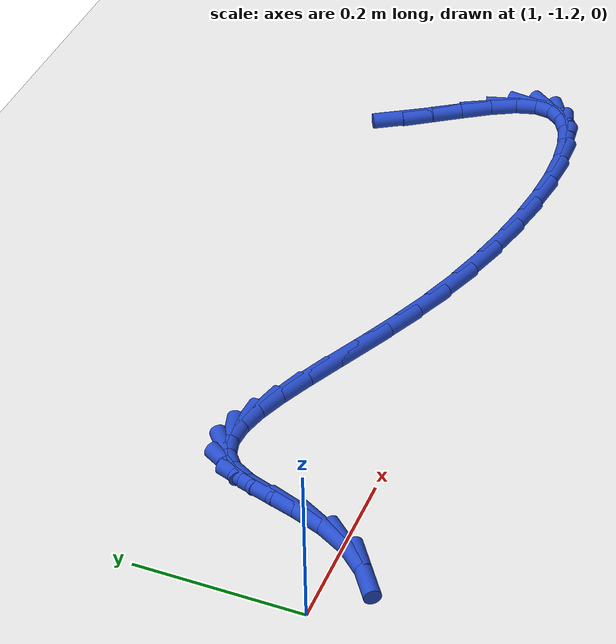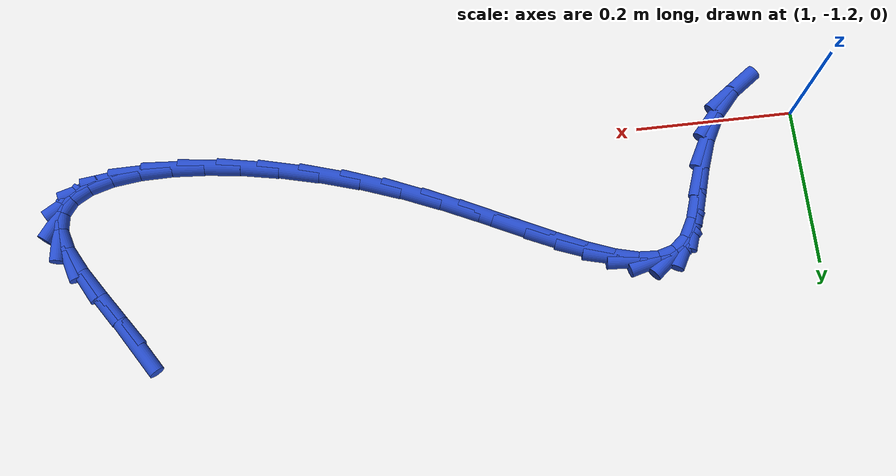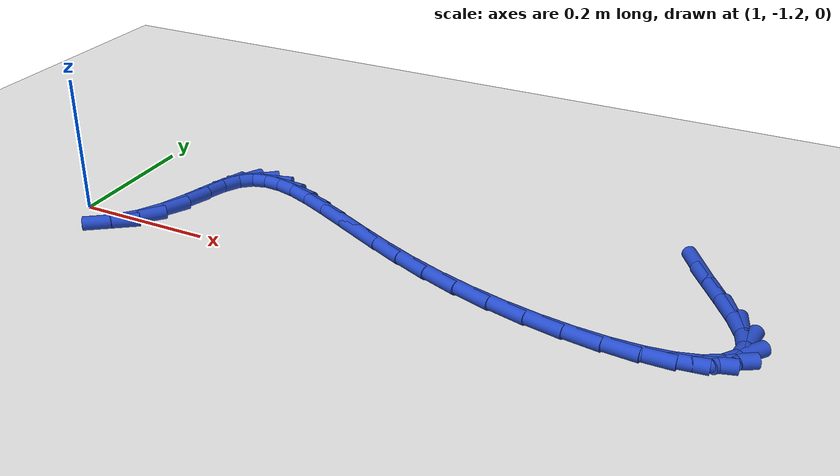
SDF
<sdf version="1.6">
 <world name="default">
  <model name="ground_plane">
   <static>1</static>
   <link name="link">
    <collision name="collision">
     <geometry><plane><normal>0 0 1</normal><size>100 100</size></plane></geometry>
     <surface><friction><ode><mu>100</mu><mu2>50</mu2></ode></friction></surface>
    </collision>
    <visual name="visual">
     <cast_shadows>0</cast_shadows>
     <geometry><plane><normal>0 0 1</normal><size>100 100</size></plane></geometry>
     <material>
      <script><uri>file://media/materials/scripts/gazebo.material</uri><name>Gazebo/WhiteGlow</name></script>
     </material>
    </visual>
   </link>
  </model>
  <model name="line">
   <link name="link_174">
    <pose>1.850950762954997 -0.9874433402679319 0.01 0 1.57 -1.02286173026088</pose>
    <collision name="collision">
     <geometry><cylinder><radius>0.01</radius><length>0.08</length></cylinder></geometry>
    </collision>
    <visual name="visual">
     <material>
      <script><name>Gazebo/Blue</name><uri>file://media/materials/scripts/gazebo.material</uri></script>
     </material>
     <geometry><cylinder><radius>0.01</radius><length>0.08</length></cylinder></geometry>
    </visual>
   </link>
   <link name="link_175">
    <pose>1.8712783784948301 -1.0207527194646033 0.01 0 1.57 -0.9810620671381024</pose>
    <collision name="collision">
     <geometry><cylinder><radius>0.01</radius><length>0.08</length></cylinder></geometry>
    </collision>
    <visual name="visual">
     <material>
      <script><name>Gazebo/Blue</name><uri>file://media/materials/scripts/gazebo.material</uri></script>
     </material>
     <geometry><cylinder><radius>0.01</radius><length>0.08</length></cylinder></geometry>
    </visual>
   </link>
   <link name="link_176">
    <pose>1.894091696280245 -1.0548446379751648 0.01 0 1.57 -0.9975035469403394</pose>
    <collision name="collision">
     <geometry><cylinder><radius>0.01</radius><length>0.08</length></cylinder></geometry>
    </collision>
    <visual name="visual">
     <material>
      <script><name>Gazebo/Blue</name><uri>file://media/materials/scripts/gazebo.material</uri></script>
     </material>
     <geometry><cylinder><radius>0.01</radius><length>0.08</length></cylinder></geometry>
    </visual>
   </link>
   <link name="link_177">
    <pose>1.915582835590559 -1.0881320311204636 0.01 0 1.57 -1.0837838808763667</pose>
    <collision name="collision">
     <geometry><cylinder><radius>0.01</radius><length>0.08</length></cylinder></geometry>
    </collision>
    <visual name="visual">
     <material>
      <script><name>Gazebo/Blue</name><uri>file://media/materials/scripts/gazebo.material</uri></script>
     </material>
     <geometry><cylinder><radius>0.01</radius><length>0.08</length></cylinder></geometry>
    </visual>
   </link>
   <link name="link_178">
    <pose>1.9319439157050902 -1.1190278342213489 0.01 0 1.57 -1.3006394869709197</pose>
    <collision name="collision">
     <geometry><cylinder><radius>0.01</radius><length>0.08</length></cylinder></geometry>
    </collision>
    <visual name="visual">
     <material>
      <script><name>Gazebo/Blue</name><uri>file://media/materials/scripts/gazebo.material</uri></script>
     </material>
     <geometry><cylinder><radius>0.01</radius><length>0.08</length></cylinder></geometry>
    </visual>
   </link>
   <link name="link_179">
    <pose>1.9394014622952058 -1.1459574824420231 0.01 0 1.57 1.4205129078432377</pose>
    <collision name="collision">
     <geometry><cylinder><radius>0.01</radius><length>0.08</length></cylinder></geometry>
    </collision>
    <visual name="visual">
     <material>
      <script><name>Gazebo/Blue</name><uri>file://media/materials/scripts/gazebo.material</uri></script>
     </material>
     <geometry><cylinder><radius>0.01</radius><length>0.08</length></cylinder></geometry>
    </visual>
   </link>
   <link name="link_180">
    <pose>1.936059362347345 -1.1680284563737546 0.01 0 1.57 0.9190073324955911</pose>
    <collision name="collision">
     <geometry><cylinder><radius>0.01</radius><length>0.08</length></cylinder></geometry>
    </collision>
    <visual name="visual">
     <material>
      <script><name>Gazebo/Blue</name><uri>file://media/materials/scripts/gazebo.material</uri></script>
     </material>
     <geometry><cylinder><radius>0.01</radius><length>0.08</length></cylinder></geometry>
    </visual>
   </link>
   <link name="link_181">
    <pose>1.9228286852785041 -1.1853680860764868 0.01 0 1.57 0.5280212353860468</pose>
    <collision name="collision">
     <geometry><cylinder><radius>0.01</radius><length>0.08</length></cylinder></geometry>
    </collision>
    <visual name="visual">
     <material>
      <script><name>Gazebo/Blue</name><uri>file://media/materials/scripts/gazebo.material</uri></script>
     </material>
     <geometry><cylinder><radius>0.01</radius><length>0.08</length></cylinder></geometry>
    </visual>
   </link>
   <link name="link_182">
    <pose>1.9008503587314127 -1.1981872091110808 0.01 0 1.57 0.28006697330903846</pose>
    <collision name="collision">
     <geometry><cylinder><radius>0.01</radius><length>0.08</length></cylinder></geometry>
    </collision>
    <visual name="visual">
     <material>
      <script><name>Gazebo/Blue</name><uri>file://media/materials/scripts/gazebo.material</uri></script>
     </material>
     <geometry><cylinder><radius>0.01</radius><length>0.08</length></cylinder></geometry>
    </visual>
   </link>
   <link name="link_183">
    <pose>1.8712653103487995 -1.2066966630383966 0.01 0 1.57 0.12173950148291716</pose>
    <collision name="collision">
     <geometry><cylinder><radius>0.01</radius><length>0.08</length></cylinder></geometry>
    </collision>
    <visual name="visual">
     <material>
      <script><name>Gazebo/Blue</name><uri>file://media/materials/scripts/gazebo.material</uri></script>
     </material>
     <geometry><cylinder><radius>0.01</radius><length>0.08</length></cylinder></geometry>
    </visual>
   </link>
   <link name="link_184">
    <pose>1.8352144677733953 -1.211107285419293 0.01 0 1.57 0.012630613807765879</pose>
    <collision name="collision">
     <geometry><cylinder><radius>0.01</radius><length>0.08</length></cylinder></geometry>
    </collision>
    <visual name="visual">
     <material>
      <script><name>Gazebo/Blue</name><uri>file://media/materials/scripts/gazebo.material</uri></script>
     </material>
     <geometry><cylinder><radius>0.01</radius><length>0.08</length></cylinder></geometry>
    </visual>
   </link>
   <link name="link_185">
    <pose>1.793838758647928 -1.2116299138146298 0.01 0 1.57 -0.06912918699062963</pose>
    <collision name="collision">
     <geometry><cylinder><radius>0.01</radius><length>0.08</length></cylinder></geometry>
    </collision>
    <visual name="visual">
     <material>
      <script><name>Gazebo/Blue</name><uri>file://media/materials/scripts/gazebo.material</uri></script>
     </material>
     <geometry><cylinder><radius>0.01</radius><length>0.08</length></cylinder></geometry>
    </visual>
   </link>
   <link name="link_186">
    <pose>1.7482791106151279 -1.2084753857852666 0.01 0 1.57 -0.13539058851037986</pose>
    <collision name="collision">
     <geometry><cylinder><radius>0.01</radius><length>0.08</length></cylinder></geometry>
    </collision>
    <visual name="visual">
     <material>
      <script><name>Gazebo/Blue</name><uri>file://media/materials/scripts/gazebo.material</uri></script>
     </material>
     <geometry><cylinder><radius>0.01</radius><length>0.08</length></cylinder></geometry>
    </visual>
   </link>
   <link name="link_187">
    <pose>1.6996764513177225 -1.2018545388920625 0.01 0 1.57 -0.1931154725895868</pose>
    <collision name="collision">
     <geometry><cylinder><radius>0.01</radius><length>0.08</length></cylinder></geometry>
    </collision>
    <visual name="visual">
     <material>
      <script><name>Gazebo/Blue</name><uri>file://media/materials/scripts/gazebo.material</uri></script>
     </material>
     <geometry><cylinder><radius>0.01</radius><length>0.08</length></cylinder></geometry>
    </visual>
   </link>
   <link name="link_188">
    <pose>1.6491717083984438 -1.1919782106958778 0.01 0 1.57 -0.2468961765877354</pose>
    <collision name="collision">
     <geometry><cylinder><radius>0.01</radius><length>0.08</length></cylinder></geometry>
    </collision>
    <visual name="visual">
     <material>
      <script><name>Gazebo/Blue</name><uri>file://media/materials/scripts/gazebo.material</uri></script>
     </material>
     <geometry><cylinder><radius>0.01</radius><length>0.08</length></cylinder></geometry>
    </visual>
   </link>
   <link name="link_189">
    <pose>1.5979058095000178 -1.1790572387575713 0.01 0 1.57 -0.3002484657453519</pose>
    <collision name="collision">
     <geometry><cylinder><radius>0.01</radius><length>0.08</length></cylinder></geometry>
    </collision>
    <visual name="visual">
     <material>
      <script><name>Gazebo/Blue</name><uri>file://media/materials/scripts/gazebo.material</uri></script>
     </material>
     <geometry><cylinder><radius>0.01</radius><length>0.08</length></cylinder></geometry>
    </visual>
   </link>
   <link name="link_190">
    <pose>1.5470196822651772 -1.1633024606380036 0.01 0 1.57 -0.3559251203753911</pose>
    <collision name="collision">
     <geometry><cylinder><radius>0.01</radius><length>0.08</length></cylinder></geometry>
    </collision>
    <visual name="visual">
     <material>
      <script><name>Gazebo/Blue</name><uri>file://media/materials/scripts/gazebo.material</uri></script>
     </material>
     <geometry><cylinder><radius>0.01</radius><length>0.08</length></cylinder></geometry>
    </visual>
   </link>
   <link name="link_191">
    <pose>1.497635935721748 -1.1449436703513418 0.01 0 1.57 -0.40589925828863777</pose>
    <collision name="collision">
     <geometry><cylinder><radius>0.01</radius><length>0.08</length></cylinder></geometry>
    </collision>
    <visual name="visual">
     <material>
      <script><name>Gazebo/Blue</name><uri>file://media/materials/scripts/gazebo.material</uri></script>
     </material>
     <geometry><cylinder><radius>0.01</radius><length>0.08</length></cylinder></geometry>
    </visual>
   </link>
   <link name="link_192">
    <pose>1.4504417264797882 -1.124661276408027 0.01 0 1.57 -0.43989232423580865</pose>
    <collision name="collision">
     <geometry><cylinder><radius>0.01</radius><length>0.08</length></cylinder></geometry>
    </collision>
    <visual name="visual">
     <material>
      <script><name>Gazebo/Blue</name><uri>file://media/materials/scripts/gazebo.material</uri></script>
     </material>
     <geometry><cylinder><radius>0.01</radius><length>0.08</length></cylinder></geometry>
    </visual>
   </link>
   <link name="link_193">
    <pose>1.4056807642981615 -1.1035945746074771 0.01 0 1.57 -0.4567675944586004</pose>
    <collision name="collision">
     <geometry><cylinder><radius>0.01</radius><length>0.08</length></cylinder></geometry>
    </collision>
    <visual name="visual">
     <material>
      <script><name>Gazebo/Blue</name><uri>file://media/materials/scripts/gazebo.material</uri></script>
     </material>
     <geometry><cylinder><radius>0.01</radius><length>0.08</length></cylinder></geometry>
    </visual>
   </link>
   <link name="link_194">
    <pose>1.3635768412682614 -1.0829034719326263 0.01 0 1.57 -0.45430482733834227</pose>
    <collision name="collision">
     <geometry><cylinder><radius>0.01</radius><length>0.08</length></cylinder></geometry>
    </collision>
    <visual name="visual">
     <material>
      <script><name>Gazebo/Blue</name><uri>file://media/materials/scripts/gazebo.material</uri></script>
     </material>
     <geometry><cylinder><radius>0.01</radius><length>0.08</length></cylinder></geometry>
    </visual>
   </link>
   <link name="link_195">
    <pose>1.3243537494814845 -1.063747875366408 0.01 0 1.57 -0.4276067921753316</pose>
    <collision name="collision">
     <geometry><cylinder><radius>0.01</radius><length>0.08</length></cylinder></geometry>
    </collision>
    <visual name="visual">
     <material>
      <script><name>Gazebo/Blue</name><uri>file://media/materials/scripts/gazebo.material</uri></script>
     </material>
     <geometry><cylinder><radius>0.01</radius><length>0.08</length></cylinder></geometry>
    </visual>
   </link>
   <link name="link_196">
    <pose>1.2882352810292228 -1.0472876918917553 0.01 0 1.57 -0.36699594332737173</pose>
    <collision name="collision">
     <geometry><cylinder><radius>0.01</radius><length>0.08</length></cylinder></geometry>
    </collision>
    <visual name="visual">
     <material>
      <script><name>Gazebo/Blue</name><uri>file://media/materials/scripts/gazebo.material</uri></script>
     </material>
     <geometry><cylinder><radius>0.01</radius><length>0.08</length></cylinder></geometry>
    </visual>
   </link>
   <link name="link_197">
    <pose>1.2554452280028736 -1.034682828491603 0.01 0 1.57 -0.2539770608285648</pose>
    <collision name="collision">
     <geometry><cylinder><radius>0.01</radius><length>0.08</length></cylinder></geometry>
    </collision>
    <visual name="visual">
     <material>
      <script><name>Gazebo/Blue</name><uri>file://media/materials/scripts/gazebo.material</uri></script>
     </material>
     <geometry><cylinder><radius>0.01</radius><length>0.08</length></cylinder></geometry>
    </visual>
   </link>
   <link name="link_198">
    <pose>1.2262073824938284 -1.027093192148883 0.01 0 1.57 -0.05549675538826112</pose>
    <collision name="collision">
     <geometry><cylinder><radius>0.01</radius><length>0.08</length></cylinder></geometry>
    </collision>
    <visual name="visual">
     <material>
      <script><name>Gazebo/Blue</name><uri>file://media/materials/scripts/gazebo.material</uri></script>
     </material>
     <geometry><cylinder><radius>0.01</radius><length>0.08</length></cylinder></geometry>
    </visual>
   </link>
   <link name="link_199">
    <pose>1.2007455365934838 -1.0256786898465302 0.01 0 1.57 0.2691662823672902</pose>
    <collision name="collision">
     <geometry><cylinder><radius>0.01</radius><length>0.08</length></cylinder></geometry>
    </collision>
    <visual name="visual">
     <material>
      <script><name>Gazebo/Blue</name><uri>file://media/materials/scripts/gazebo.material</uri></script>
     </material>
     <geometry><cylinder><radius>0.01</radius><length>0.08</length></cylinder></geometry>
    </visual>
   </link>
   <link name="link_200">
    <pose>1.1792834823932323 -1.0315992285674778 0.01 0 1.57 0.6964508339539869</pose>
    <collision name="collision">
     <geometry><cylinder><radius>0.01</radius><length>0.08</length></cylinder></geometry>
    </collision>
    <visual name="visual">
     <material>
      <script><name>Gazebo/Blue</name><uri>file://media/materials/scripts/gazebo.material</uri></script>
     </material>
     <geometry><cylinder><radius>0.01</radius><length>0.08</length></cylinder></geometry>
    </visual>
   </link>
   <link name="link_201">
    <pose>1.1620450119844699 -1.0460147152946586 0.01 0 1.57 1.0705850730615818</pose>
    <collision name="collision">
     <geometry><cylinder><radius>0.01</radius><length>0.08</length></cylinder></geometry>
    </collision>
    <visual name="visual">
     <material>
      <script><name>Gazebo/Blue</name><uri>file://media/materials/scripts/gazebo.material</uri></script>
     </material>
     <geometry><cylinder><radius>0.01</radius><length>0.08</length></cylinder></geometry>
    </visual>
   </link>
   <link name="link_202">
    <pose>1.1490590439541117 -1.0697734395583065 0.01 0 1.57 1.2487854759742505</pose>
    <collision name="collision">
     <geometry><cylinder><radius>0.01</radius><length>0.08</length></cylinder></geometry>
    </collision>
    <visual name="visual">
     <material>
      <script><name>Gazebo/Blue</name><uri>file://media/materials/scripts/gazebo.material</uri></script>
     </material>
     <geometry><cylinder><radius>0.01</radius><length>0.08</length></cylinder></geometry>
    </visual>
   </link>
   <link name="link_203">
    <pose>1.1386446538531512 -1.1009895227276139 0.01 0 1.57 1.2845649611545886</pose>
    <collision name="collision">
     <geometry><cylinder><radius>0.01</radius><length>0.08</length></cylinder></geometry>
    </collision>
    <visual name="visual">
     <material>
      <script><name>Gazebo/Blue</name><uri>file://media/materials/scripts/gazebo.material</uri></script>
     </material>
     <geometry><cylinder><radius>0.01</radius><length>0.08</length></cylinder></geometry>
    </visual>
   </link>
   <link name="link_204">
    <pose>1.1282346794777283 -1.136359925063114 0.01 0 1.57 1.2265925685693524</pose>
    <collision name="collision">
     <geometry><cylinder><radius>0.01</radius><length>0.08</length></cylinder></geometry>
    </collision>
    <visual name="visual">
     <material>
      <script><name>Gazebo/Blue</name><uri>file://media/materials/scripts/gazebo.material</uri></script>
     </material>
     <geometry><cylinder><radius>0.01</radius><length>0.08</length></cylinder></geometry>
    </visual>
   </link>
   <link name="link_205">
    <pose>1.1152544579420334 -1.1725696126683693 0.01 0 1.57 1.0777584716226232</pose>
    <collision name="collision">
     <geometry><cylinder><radius>0.01</radius><length>0.08</length></cylinder></geometry>
    </collision>
    <visual name="visual">
     <material>
      <script><name>Gazebo/Blue</name><uri>file://media/materials/scripts/gazebo.material</uri></script>
     </material>
     <geometry><cylinder><radius>0.01</radius><length>0.08</length></cylinder></geometry>
    </visual>
   </link>
   <link name="link_206">
    <pose>1.0971293263602602 -1.2063035516469391 0.01 0 1.57 0.845232508876597</pose>
    <collision name="collision">
     <geometry><cylinder><radius>0.01</radius><length>0.08</length></cylinder></geometry>
    </collision>
    <visual name="visual">
     <material>
      <script><name>Gazebo/Blue</name><uri>file://media/materials/scripts/gazebo.material</uri></script>
     </material>
     <geometry><cylinder><radius>0.01</radius><length>0.08</length></cylinder></geometry>
    </visual>
   </link>
   <link name="link_207">
    <pose>1.071878753884464 -1.2347722211449774 0.01 0 1.57 0.6205034088736119</pose>
    <collision name="collision">
     <geometry><cylinder><radius>0.01</radius><length>0.08</length></cylinder></geometry>
    </collision>
    <visual name="visual">
     <material>
      <script><name>Gazebo/Blue</name><uri>file://media/materials/scripts/gazebo.material</uri></script>
     </material>
     <geometry><cylinder><radius>0.01</radius><length>0.08</length></cylinder></geometry>
    </visual>
   </link>
  </model>
 </world>
</sdf>
